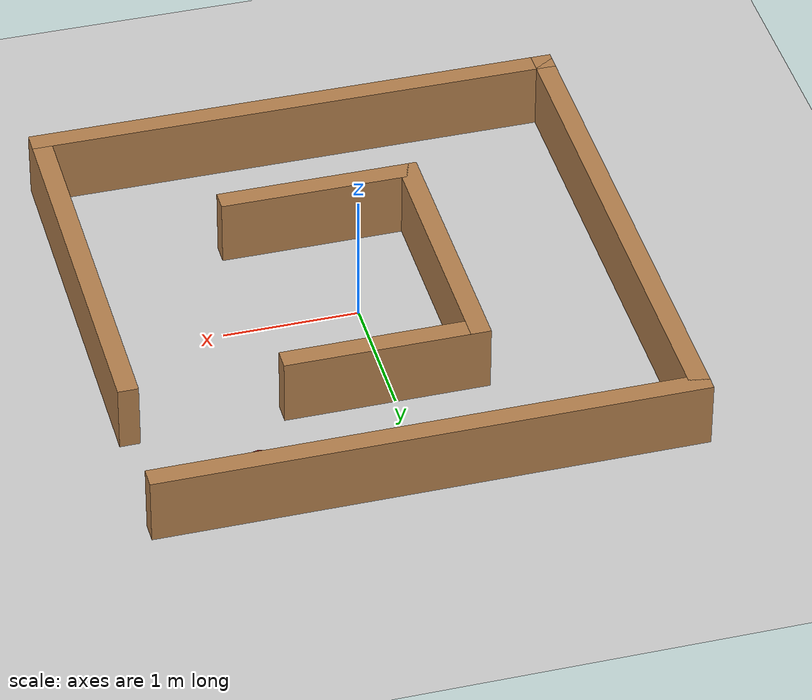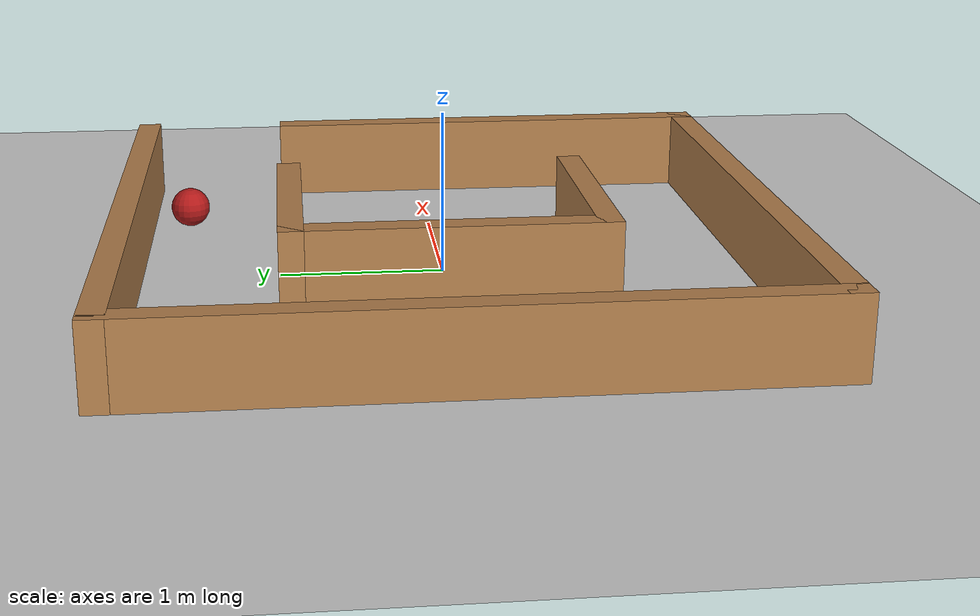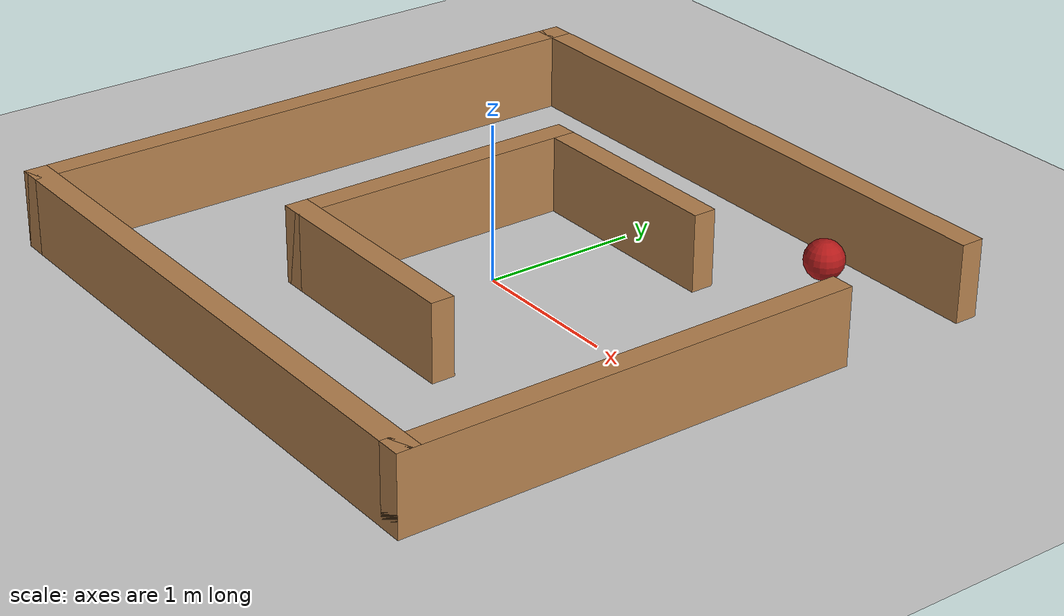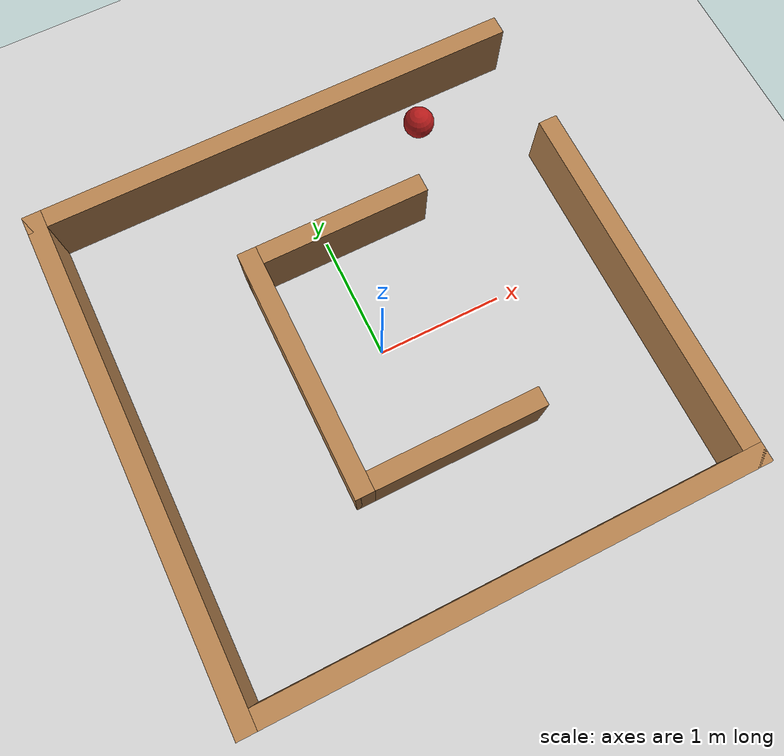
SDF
<sdf version="1.6">
 <world name="default">
  <light name="sun" type="directional">
   <pose>0 0 10 0 -0 0</pose>
   <diffuse>0.8 0.8 0.8 1</diffuse>
   <specular>0.2 0.2 0.2 1</specular>
   <attenuation>
    <range>1000</range>
    <constant>0.9</constant>
    <linear>0.01</linear>
    <quadratic>0.001</quadratic>
   </attenuation>
   <direction>-0.5 0.1 -0.9</direction>
  </light>
  <model name="ground_plane">
   <static>1</static>
   <link name="link">
    <collision name="collision">
     <geometry><plane><normal>0 0 1</normal><size>100 100</size></plane></geometry>
     <surface>
      <contact><collide_bitmask>65535</collide_bitmask></contact>
      <friction><ode><mu>100</mu><mu2>50</mu2></ode></friction>
     </surface>
    </collision>
    <visual name="visual">
     <cast_shadows>0</cast_shadows>
     <geometry><plane><normal>0 0 1</normal><size>100 100</size></plane></geometry>
     <material>
      <script><uri>file://media/materials/scripts/gazebo.material</uri><name>Gazebo/Grey</name></script>
     </material>
    </visual>
   </link>
  </model>
  <gravity>0 0 -9.8</gravity>
  <magnetic_field>6e-06 2.3e-05 -4.2e-05</magnetic_field>
  <atmosphere type="adiabatic"/>
  <physics name="default_physics" default="0" type="ode">
   <max_step_size>0.001</max_step_size>
   <real_time_factor>1</real_time_factor>
   <real_time_update_rate>1000</real_time_update_rate>
  </physics>
  <scene><ambient>0.4 0.4 0.4 1</ambient><background>0.7 0.7 0.7 1</background><shadows>1</shadows></scene>
  <audio><device>default</device></audio>
  <spherical_coordinates>
   <surface_model>EARTH_WGS84</surface_model>
   <latitude_deg>0</latitude_deg>
   <longitude_deg>0</longitude_deg>
   <elevation>0</elevation>
   <heading_deg>0</heading_deg>
  </spherical_coordinates>
  <model name="world2">
   <pose>-0.014891 -0.01057 0 0 -0 0</pose>
   <link name="Wall_0">
    <collision name="Wall_0_Collision">
     <geometry><box><size>4 0.15 0.5</size></box></geometry>
     <pose>0 0 0.25 0 -0 0</pose>
    </collision>
    <visual name="Wall_0_Visual">
     <pose>0 0 0.25 0 -0 0</pose>
     <geometry><box><size>4 0.15 0.5</size></box></geometry>
     <material>
      <script><uri>file://media/materials/scripts/gazebo.material</uri><name>Gazebo/Wood</name></script>
      <ambient>1 1 1 1</ambient>
     </material>
     <meta><layer>0</layer></meta>
    </visual>
    <pose>0 1.925 0 0 -0 3.14159</pose>
   </link>
   <link name="Wall_1">
    <collision name="Wall_1_Collision">
     <geometry><box><size>4 0.15 0.5</size></box></geometry>
     <pose>0 0 0.25 0 -0 0</pose>
    </collision>
    <visual name="Wall_1_Visual">
     <pose>0 0 0.25 0 -0 0</pose>
     <geometry><box><size>4 0.15 0.5</size></box></geometry>
     <material>
      <script><uri>file://media/materials/scripts/gazebo.material</uri><name>Gazebo/Wood</name></script>
      <ambient>1 1 1 1</ambient>
     </material>
     <meta><layer>0</layer></meta>
    </visual>
    <pose>-1.925 0 0 0 -0 -1.5708</pose>
   </link>
   <link name="Wall_2">
    <collision name="Wall_2_Collision">
     <geometry><box><size>4 0.15 0.5</size></box></geometry>
     <pose>0 0 0.25 0 -0 0</pose>
    </collision>
    <visual name="Wall_2_Visual">
     <pose>0 0 0.25 0 -0 0</pose>
     <geometry><box><size>4 0.15 0.5</size></box></geometry>
     <material>
      <script><uri>file://media/materials/scripts/gazebo.material</uri><name>Gazebo/Wood</name></script>
      <ambient>1 1 1 1</ambient>
     </material>
     <meta><layer>0</layer></meta>
    </visual>
    <pose>0 -1.925 0 0 -0 0</pose>
   </link>
   <link name="Wall_3">
    <collision name="Wall_3_Collision">
     <geometry><box><size>3 0.15 0.5</size></box></geometry>
     <pose>0 0 0.25 0 -0 0</pose>
    </collision>
    <visual name="Wall_3_Visual">
     <pose>0 0 0.25 0 -0 0</pose>
     <geometry><box><size>3 0.15 0.5</size></box></geometry>
     <material>
      <script><uri>file://media/materials/scripts/gazebo.material</uri><name>Gazebo/Wood</name></script>
      <ambient>1 1 1 1</ambient>
     </material>
     <meta><layer>0</layer></meta>
    </visual>
    <pose>1.925 -0.5 0 0 -0 1.5708</pose>
   </link>
   <link name="Wall_5">
    <collision name="Wall_5_Collision">
     <geometry><box><size>1.5 0.15 0.5</size></box></geometry>
     <pose>0 0 0.25 0 -0 0</pose>
    </collision>
    <visual name="Wall_5_Visual">
     <pose>0 0 0.25 0 -0 0</pose>
     <geometry><box><size>1.5 0.15 0.5</size></box></geometry>
     <material>
      <script><uri>file://media/materials/scripts/gazebo.material</uri><name>Gazebo/Wood</name></script>
      <ambient>1 1 1 1</ambient>
     </material>
     <meta><layer>0</layer></meta>
    </visual>
    <pose>0.07 0.945 0 0 -0 3.14159</pose>
   </link>
   <link name="Wall_6">
    <collision name="Wall_6_Collision">
     <geometry><box><size>2 0.15 0.5</size></box></geometry>
     <pose>0 0 0.25 0 -0 0</pose>
    </collision>
    <visual name="Wall_6_Visual">
     <pose>0 0 0.25 0 -0 0</pose>
     <geometry><box><size>2 0.15 0.5</size></box></geometry>
     <material>
      <script><uri>file://media/materials/scripts/gazebo.material</uri><name>Gazebo/Wood</name></script>
      <ambient>1 1 1 1</ambient>
     </material>
     <meta><layer>0</layer></meta>
    </visual>
    <pose>-0.605 0.02 0 0 -0 -1.5708</pose>
   </link>
   <link name="Wall_7">
    <collision name="Wall_7_Collision">
     <geometry><box><size>1.5 0.15 0.5</size></box></geometry>
     <pose>0 0 0.25 0 -0 0</pose>
    </collision>
    <visual name="Wall_7_Visual">
     <pose>0 0 0.25 0 -0 0</pose>
     <geometry><box><size>1.5 0.15 0.5</size></box></geometry>
     <material>
      <script><uri>file://media/materials/scripts/gazebo.material</uri><name>Gazebo/Wood</name></script>
      <ambient>1 1 1 1</ambient>
     </material>
     <meta><layer>0</layer></meta>
    </visual>
    <pose>0.07 -0.905 0 0 -0 0</pose>
   </link>
   <static>1</static>
  </model>
  <model name="unit_sphere_red">
   <link name="link">
    <inertial>
     <mass>1</mass>
     <inertia><ixx>0.1</ixx><ixy>0</ixy><ixz>0</ixz><iyy>0.1</iyy><iyz>0</iyz><izz>0.1</izz></inertia>
    </inertial>
    <visual name="visual">
     <geometry><sphere><radius>0.127028</radius></sphere></geometry>
     <material>
      <script><name>Gazebo/Grey</name><uri>file://media/materials/scripts/gazebo.material</uri></script>
      <ambient>0.7 0 0 0</ambient>
      <shader type="vertex"><normal_map>__default__</normal_map></shader>
      <diffuse>0.7 0.1 0.1 1</diffuse>
      <specular>0.5 0.01 0.01 1</specular>
      <emissive>0 0 0 1</emissive>
     </material>
    </visual>
    <collision name="collision">
     <geometry><sphere><radius>0.127028</radius></sphere></geometry>
     <surface>
      <friction>
       <ode><mu>1</mu><mu2>1</mu2><fdir1>0 0 0</fdir1><slip1>0</slip1><slip2>0</slip2></ode>
       <torsional>
        <coefficient>1</coefficient>
        <patch_radius>0</patch_radius>
        <surface_radius>0</surface_radius>
        <use_patch_radius>1</use_patch_radius>
        <ode><slip>0</slip></ode>
       </torsional>
      </friction>
      <bounce><restitution_coefficient>0</restitution_coefficient><threshold>1e+06</threshold></bounce>
      <contact>
       <collide_without_contact>0</collide_without_contact>
       <collide_without_contact_bitmask>1</collide_without_contact_bitmask>
       <collide_bitmask>1</collide_bitmask>
       <ode>
        <soft_cfm>0</soft_cfm>
        <soft_erp>0.2</soft_erp>
        <kp>1e+13</kp>
        <kd>1</kd>
        <max_vel>0.01</max_vel>
        <min_depth>0</min_depth>
       </ode>
       <bullet>
        <split_impulse>1</split_impulse>
        <split_impulse_penetration_threshold>-0.01</split_impulse_penetration_threshold>
        <soft_cfm>0</soft_cfm>
        <soft_erp>0.2</soft_erp>
        <kp>1e+13</kp>
        <kd>1</kd>
       </bullet>
      </contact>
     </surface>
    </collision>
   </link>
   <static>0</static>
   <pose>1.12325 1.60154 0.127028 -0.012128 0 0</pose>
  </model>
 </world>
</sdf>
